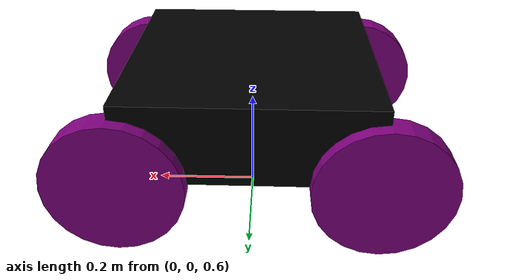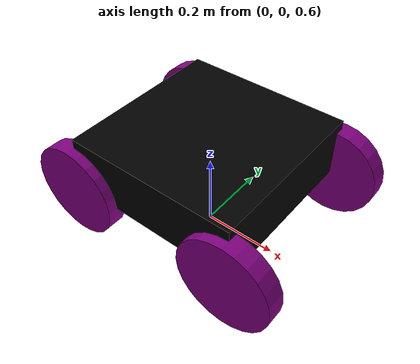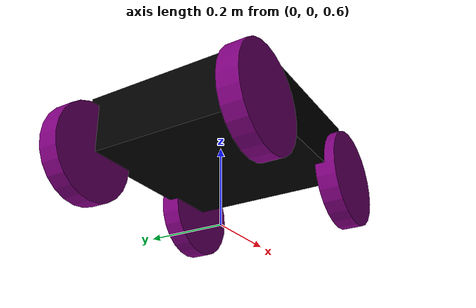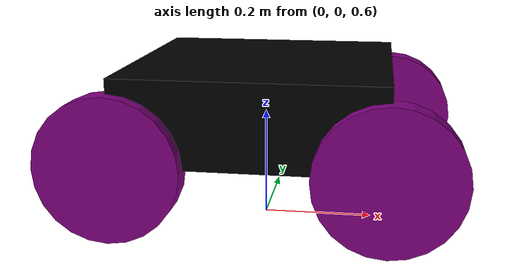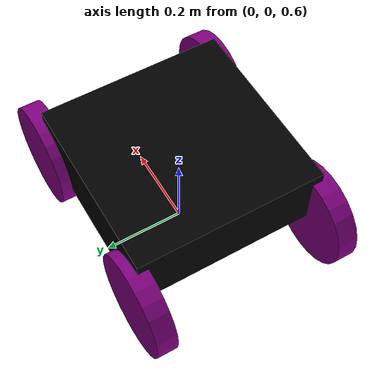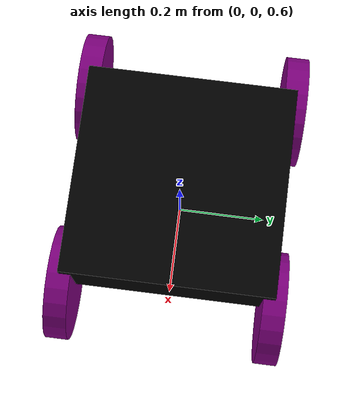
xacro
<?xml version="1.0"?>
<robot xmlns:xacro="http://www.ros.org/wiki/xacro"  name="robot">

    <xacro:include filename="inertial_macros.xacro" />
    <xacro:include filename="robot_core.xacro" />
    <xacro:include filename="gazebo_control.xacro" />
    <xacro:include filename="lidar.xacro" />

</robot>

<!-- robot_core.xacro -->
<robot xmlns:xacro="http://www.ros.org/wiki/xacro" >

    <material name="white">
        <color rgba="1 1 1 1" />
    </material>

    <material name="orange">
        <color rgba="1 0.3 0.1 1"/>
    </material>

    <material name="blue">
        <color rgba="0.2 0.2 1 1"/>
    </material>

    <material name="black">
        <color rgba="0 0 0 1"/>
    </material>

    <material name="red">
        <color rgba="1 0 0 1"/>
    </material>

    <!-- สีเพิ่มเติม -->

    <material name="green">
        <color rgba="0 1 0 1"/>
    </material>

    <material name="yellow">
        <color rgba="1 1 0 1"/>
    </material>

    <material name="purple">
        <color rgba="0.5 0 0.5 1"/>
    </material>

    <material name="cyan">
        <color rgba="0 1 1 1"/>
    </material>

    <material name="gray">
        <color rgba="0.5 0.5 0.5 1"/>
    </material>

    <!-- BASE LINK -->

    <link name="base_link"/>

    <joint name="chassis_joint" type="fixed">
        <parent link="base_link"/>
        <child link="chassis"/>
        <origin xyz="0 0 0.75" rpy="0 0 0"/>
    </joint>

    <link name="chassis">
        <visual>
            <origin xyz="0 0 0.075" rpy="0 0 0"/>
            <geometry>
                <box size="0.46 0.46 0.15"/>
            </geometry>
            <material name="black"/>
        </visual>
        <collision>
            <origin xyz="0 0 0.075" rpy="0 0 0"/>
            <geometry>
                <box size="0.46 0.46 0.15"/>
            </geometry>
        </collision>
        <xacro:inertial_box mass="0.1" x="0.46" y="0.46" z="0.15">
            <origin xyz="0 0 0.075" rpy="0 0 0"/>
        </xacro:inertial_box>
    </link>
    <gazebo reference="chassis">
        <material>Gazebo/black</material>
    </gazebo>

    <!-- BASE_FOOTPRINT LINK -->
    <joint name="base_footprint_joint" type="fixed">
        <parent link="base_link"/>
        <child link="base_footprint"/>
        <origin xyz="0 0 0" rpy="0 0 0"/>
    </joint>

    <link name="base_footprint">
    </link>

    <!-- LEFT FRONT WHEEL -->
    <joint name="left_wheel_joint" type="continuous">
        <parent link="chassis"/>
        <child link="left_wheel"/>
        <origin xyz="0.23 0.23 0" rpy="-1.5708 0 0"/>
        <axis xyz="0 0 1"/>
        <dynamics damping="0.5" friction="0.8"/>
    </joint>

    <link name="left_wheel">
        <visual>
            <geometry>
                <cylinder length="0.05" radius="0.125" />
            </geometry>
            <material name="purple"/>
        </visual>
        <collision>
            <geometry>
                <cylinder length="0.05" radius="0.125" />
            </geometry>
        </collision>
        <xacro:inertial_cylinder mass="0.1" length="0.05" radius="0.125">
            <origin xyz="0 0 0" rpy="0 0 0"/>
        </xacro:inertial_cylinder>
    </link>

    <gazebo reference="left_wheel">
        <material>Gazebo/purple</material>
        <mu1>0.8</mu1>
        <mu2>0.6</mu2>
        <plugin name="wheel_surface" filename="libgazebo_ros_surface_plugin.so">
            <rolling_resistance value="0.02"/>
            <friction value="0.9"/>
        </plugin>
    </gazebo>

    <!-- LEFT REAR WHEEL -->
    <joint name="left_wheel1_joint" type="continuous">
        <parent link="chassis"/>
        <child link="left_wheel1"/>
        <origin xyz="0.23 -0.23 0" rpy="-1.5708 0 0"/>
        <axis xyz="0 0 1"/>
        <dynamics damping="0.5" friction="0.8"/>
    </joint>

    <link name="left_wheel1">
        <visual>
            <geometry>2
                <cylinder length="0.05" radius="0.125" />
            </geometry>
            <material name="purple"/>
        </visual>
        <collision>
            <geometry>
                <cylinder length="0.05" radius="0.125" />
            </geometry>
        </collision>
        <xacro:inertial_cylinder mass="0.1" length="0.05" radius="0.125">
            <origin xyz="0 0 0" rpy="0 0 0"/>
        </xacro:inertial_cylinder>
    </link>

    <gazebo reference="left_wheel1">
        <material>Gazebo/purple</material>
        <mu1>0.8</mu1>
        <mu2>0.6</mu2>
        <plugin name="wheel_surface" filename="libgazebo_ros_surface_plugin.so">
            <rolling_resistance value="0.02"/>
            <friction value="0.9"/>
        </plugin>
    </gazebo>

    <!-- RIGHT FRONT WHEEL -->
    <joint name="right_wheel_joint" type="continuous">
        <parent link="chassis"/>
        <child link="right_wheel"/>
        <origin xyz="-0.23 0.23 0" rpy="1.5708 0 0"/>
        <axis xyz="0 0 -1"/>
        <dynamics damping="0.5" friction="0.8"/>
    </joint>

    <link name="right_wheel">
        <visual>
            <geometry>
                <cylinder length="0.05" radius="0.125" />
            </geometry>
            <material name="purple"/>
        </visual>
        <collision>
            <geometry>
                <cylinder length="0.05" radius="0.125" />
            </geometry>
        </collision>
        <xacro:inertial_cylinder mass="0.1" length="0.05" radius="0.125">
            <origin xyz="0 0 0" rpy="0 0 0"/>
        </xacro:inertial_cylinder>
    </link>

    <gazebo reference="right_wheel">
        <material>Gazebo/purple</material>
        <mu1>0.8</mu1>
        <mu2>0.6</mu2>
        <plugin name="wheel_surface" filename="libgazebo_ros_surface_plugin.so">
            <rolling_resistance value="0.02"/>
            <friction value="0.9"/>
        </plugin>
    </gazebo>

    <!-- RIGHT REAR WHEEL -->
    <joint name="right_wheel1_joint" type="continuous">
        <parent link="chassis"/>
        <child link="right_wheel1"/>
        <origin xyz="-0.23 -0.23 0" rpy="1.5708 0 0"/>
        <axis xyz="0 0 -1"/>
        <dynamics damping="0.5" friction="0.8"/>
    </joint>

    <link name="right_wheel1">
        <visual>
            <geometry>
                <cylinder length="0.05" radius="0.125" />
            </geometry>
            <material name="purple"/>
        </visual>
        <collision>
            <geometry>
                <cylinder length="0.05" radius="0.125" />
            </geometry>
        </collision>
        <xacro:inertial_cylinder mass="0.1" length="0.05" radius="0.125">
            <origin xyz="0 0 0" rpy="0 0 0"/>
        </xacro:inertial_cylinder>
    </link>

    <gazebo reference="right_wheel1">
        <material>Gazebo/purple</material>
        <mu1>0.8</mu1>
        <mu2>0.6</mu2>
        <plugin name="wheel_surface" filename="libgazebo_ros_surface_plugin.so">
            <rolling_resistance value="0.02"/>
            <friction value="0.9"/>
        </plugin>
    </gazebo>

    <!-- CASTER WHEEL -->

    <joint name="caster_wheel_joint" type="fixed">
        <parent link="chassis"/>
        <child link="caster_wheel"/>
        <origin xyz="0 0 0" rpy="0 0 0"/>
    </joint>

    <link name="caster_wheel">
        <visual>
            <geometry>
                <sphere radius="0.0" />
            </geometry>
            <material name="blue"/>
        </visual>
        <collision>
            <geometry>
                <sphere radius="0.0" />
            </geometry>
        </collision>
        <xacro:inertial_sphere mass="0.1" radius="0.0">
            <origin xyz="0 0 0" rpy="0 0 0"/>
        </xacro:inertial_sphere>
    </link>
    <gazebo reference="caster_wheel">
        <material>Gazebo/Blue</material>
        <mu1 value="0.5"/>
        <mu2 value="0.5"/>
    </gazebo>

</robot>

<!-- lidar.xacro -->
<robot xmlns:xacro="http://www.ros.org/wiki/xacro" >

    <joint name="laser_joint" type="fixed">
        <parent link="chassis"/>
        <child link="laser_frame"/>
        <origin xyz="0.15 0 0.18" rpy="0 0 0"/>
    </joint>

    <link name="laser_frame">
        <visual>
            <geometry>
                <cylinder radius="0.00015" length="0.0001"/>
            </geometry>
            <material name="orange"/>
        </visual>
        <collision>
            <geometry>
                <cylinder radius="0.00015" length="0.0001"/>
            </geometry>
        </collision>
        <xacro:inertial_cylinder mass="0.1" length="0.1" radius="0.00015">
            <origin xyz="0 0 0" rpy="0 0 0"/>
        </xacro:inertial_cylinder>
    </link>

    <gazebo reference="laser_frame">
        <material>Gazebo/Orange</material>

        <sensor name="laser" type="ray">
            <pose> 0 0 0 0 0 0 </pose>
            <visualize>true</visualize>
            <update_rate>10</update_rate>
            <ray>
                <scan>
                    <horizontal>
                        <samples>360</samples>
                        <min_angle>-3.14</min_angle>
                        <max_angle>3.14</max_angle>
                    </horizontal>
                </scan>
                <range>
                    <min>0.3</min>
                    <max>12</max>
                </range>
            </ray>

            <plugin name="laser_controller" filename="libgazebo_ros_ray_sensor.so">
                <ros>
                    <argument>~/out:=scan</argument>
                </ros>
                <output_type>sensor_msgs/LaserScan</output_type>
                <frame_name>laser_frame</frame_name>
            </plugin>
        </sensor>
    </gazebo>

</robot>
